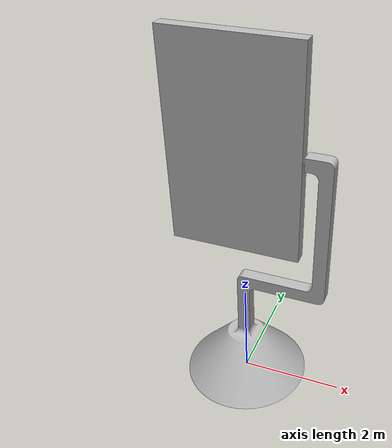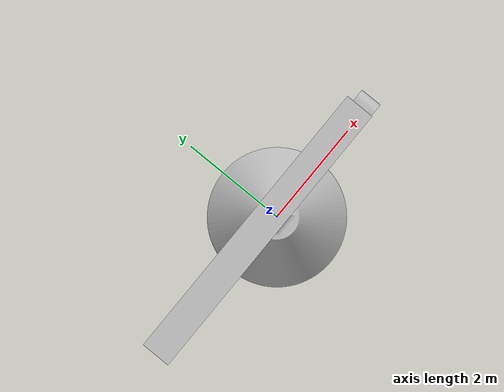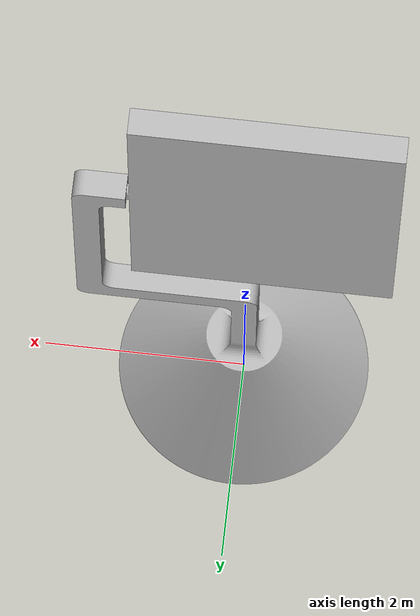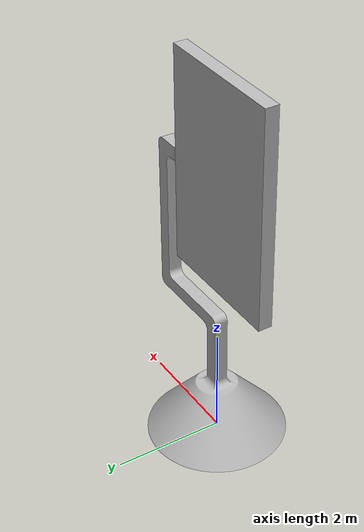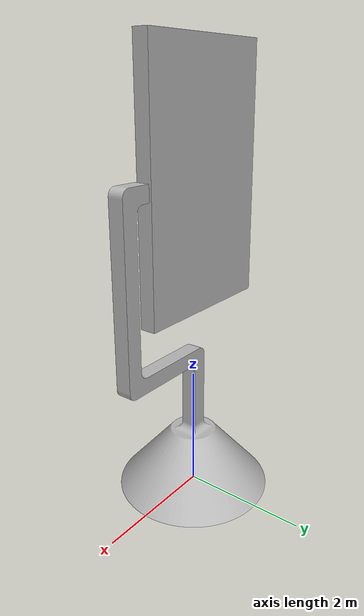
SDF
<?xml version="1.0" ?>
<sdf version="1.5">
  <model name="Perching_platform">
    <static>false</static>
    <link name="support_link">
      <collision name="collision">
        <geometry>
          <mesh>
            <scale>5e-3 5e-3 5e-3</scale>
            <uri>model://Perching_platform/meshes/base.stl</uri>
          </mesh>
        </geometry>
      </collision>
      <visual name="visual">
        <geometry>
          <mesh>
            <scale>5e-3 5e-3 5e-3</scale>
            <uri>model://Perching_platform/meshes/base.stl</uri>
          </mesh>
        </geometry>
      </visual>
    </link>

    <link name="plane_link">
      <pose> 0.15 -0.12 0.22 0 0 0 </pose>
      <collision name="collision">
        <geometry>
          <mesh>
            <scale>5e-3 5e-3 5e-3</scale>
            <uri>model://Perching_platform/meshes/plane.stl</uri>
          </mesh>
        </geometry>
      </collision>
      <visual name="visual">
        <geometry>
          <mesh>
            <scale>5e-3 5e-3 5e-3</scale>
            <uri>model://Perching_platform/meshes/plane.stl</uri>
          </mesh>
        </geometry>
      </visual>
    </link>

    <joint name='base_to_plane_joint' type='revolute'>
      <pose>0.0 0 5.15 0.0 0 0</pose>
      <child>plane_link</child>
      <parent>support_link</parent>
      <axis>
        <xyz>1 0 0</xyz>
        <limit>
          <lower>-1.57</lower>
          <upper>1.57</upper>
        </limit>
        <dynamics>
          <friction>1.0</friction>
          <spring_reference>0</spring_reference>
          <spring_stiffness>0</spring_stiffness>
        </dynamics>
        <use_parent_model_frame>1</use_parent_model_frame>
      </axis>
    </joint>

  </model>
</sdf>
